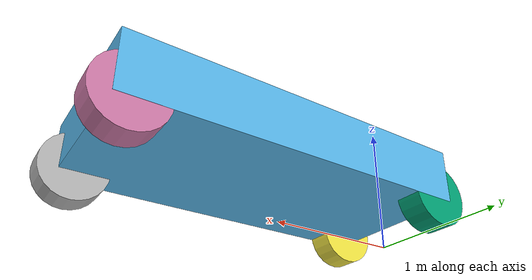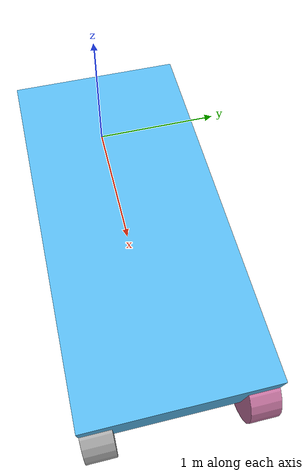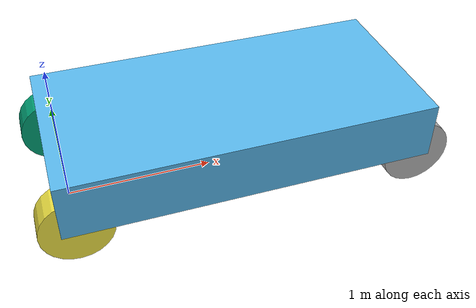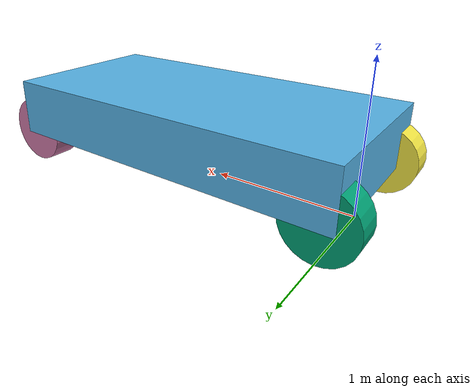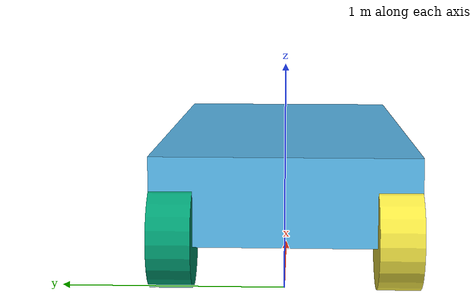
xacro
<?xml version="1.0"?>
<robot xmlns:xacro="http://www.ros.org/wiki/xacro" name="golf_cart">

  <!-- Parameters (meters, radians, kg) -->
  <xacro:property name="wheel_diameter" value="0.471"/>
  <xacro:property name="wheel_radius"   value="0.2355"/>
  <xacro:property name="wheel_width"    value="0.19304"/>

  <xacro:property name="wheelbase"      value="2.30"/>
  <xacro:property name="track_width"    value="1.005"/>

  <!-- Dummy root link (KDL safe) -->
  <link name="base_footprint"/>

  <!-- Base link (rear axle center) -->
  <link name="base_link">
    <visual>
      <geometry>
        <box size="2.5 1.2 0.4"/>
      </geometry>
      <origin xyz="1.15 0 0.4"/>
    </visual>

    <collision>
      <geometry>
        <box size="2.5 1.2 0.4"/>
      </geometry>
      <origin xyz="1.15 0 0.4"/>
    </collision>

    <inertial>
      <mass value="250"/>
      <origin xyz="1.15 0 0.4"/>
      <inertia
        ixx="40" ixy="0" ixz="0"
        iyy="60" iyz="0"
        izz="80"/>
    </inertial>
  </link>

  <joint name="base_footprint_to_base_link" type="fixed">
    <parent link="base_footprint"/>
    <child link="base_link"/>
    <origin xyz="0 0 0"/>
  </joint>

  <!-- Wheel macro -->
  <xacro:macro name="wheel" params="name">
    <link name="${name}">
      <visual>
        <geometry>
          <cylinder radius="${wheel_radius}" length="${wheel_width}"/>
        </geometry>
        <origin rpy="1.5708 0 0"/>
      </visual>

      <collision>
        <geometry>
          <cylinder radius="${wheel_radius}" length="${wheel_width}"/>
        </geometry>
        <origin rpy="1.5708 0 0"/>
      </collision>

      <inertial>
        <mass value="15"/>
        <inertia
          ixx="0.3" ixy="0" ixz="0"
          iyy="0.3" iyz="0"
          izz="0.3"/>
      </inertial>
    </link>
  </xacro:macro>

  <!-- Rear wheels (drive only) -->
  <xacro:wheel name="rear_left_wheel_link"/>
  <joint name="rear_left_wheel_joint" type="continuous">
    <parent link="base_link"/>
    <child link="rear_left_wheel_link"/>
    <origin xyz="0 ${track_width/2} ${wheel_radius}"/>
    <axis xyz="0 1 0"/>
  </joint>

  <xacro:wheel name="rear_right_wheel_link"/>
  <joint name="rear_right_wheel_joint" type="continuous">
    <parent link="base_link"/>
    <child link="rear_right_wheel_link"/>
    <origin xyz="0 ${-track_width/2} ${wheel_radius}"/>
    <axis xyz="0 1 0"/>
  </joint>

  <!-- Front steering links -->
  <link name="front_left_steer_link">
  <inertial>
    <mass value="5.0"/>
    <origin xyz="0 0 0"/>
    <inertia
      ixx="0.01" ixy="0" ixz="0"
      iyy="0.01" iyz="0"
      izz="0.01"/>
  </inertial>
</link>

  <joint name="front_left_steer_joint" type="revolute">
    <parent link="base_link"/>
    <child link="front_left_steer_link"/>
    <origin xyz="${wheelbase} ${track_width/2} 0"/>
    <axis xyz="0 0 1"/>
    <limit lower="-0.6" upper="0.6" effort="80" velocity="1.5"/>
  </joint>

  <link name="front_right_steer_link">
  <inertial>
    <mass value="5.0"/>
    <origin xyz="0 0 0"/>
    <inertia
      ixx="0.01" ixy="0" ixz="0"
      iyy="0.01" iyz="0"
      izz="0.01"/>
  </inertial>
</link>

  <joint name="front_right_steer_joint" type="revolute">
    <parent link="base_link"/>
    <child link="front_right_steer_link"/>
    <origin xyz="${wheelbase} ${-track_width/2} 0"/>
    <axis xyz="0 0 1"/>
    <limit lower="-0.6" upper="0.6" effort="80" velocity="1.5"/>
  </joint>

  <!-- Front wheels (steer + roll) -->
  <xacro:wheel name="front_left_wheel_link"/>
  <joint name="front_left_wheel_joint" type="continuous">
    <parent link="front_left_steer_link"/>
    <child link="front_left_wheel_link"/>
    <origin xyz="0 0 ${wheel_radius}"/>
    <axis xyz="0 1 0"/>
  </joint>

  <xacro:wheel name="front_right_wheel_link"/>
  <joint name="front_right_wheel_joint" type="continuous">
    <parent link="front_right_steer_link"/>
    <child link="front_right_wheel_link"/>
    <origin xyz="0 0 ${wheel_radius}"/>
    <axis xyz="0 1 0"/>
  </joint>

  <!-- ROS2 CONTROL (Ackermann) -->
<!-- ROS2 CONTROL (Ackermann) -->
<ros2_control name="AckermannSystem" type="system">
  <hardware>
    <plugin>gazebo_ros2_control/GazeboSystem</plugin>
  </hardware>

  <!-- Rear driven wheels -->
  <joint name="rear_left_wheel_joint">
    <command_interface name="velocity"/>
    <state_interface name="position"/>
    <state_interface name="velocity"/>
  </joint>

  <joint name="rear_right_wheel_joint">
    <command_interface name="velocity"/>
    <state_interface name="position"/>
    <state_interface name="velocity"/>
  </joint>

  <!-- Front steering joints -->
  <joint name="front_left_steer_joint">
    <command_interface name="position"/>
    <state_interface name="position"/>
    <state_interface name="velocity"/>
  </joint>

  <joint name="front_right_steer_joint">
    <command_interface name="position"/>
    <state_interface name="position"/>
    <state_interface name="velocity"/>
  </joint>
</ros2_control>

  <!-- Gazebo ros2_control plugin -->
<gazebo>
  <plugin name="gazebo_ros2_control" filename="libgazebo_ros2_control.so">
    <robot_param>robot_description</robot_param>
    <robot_param_node>robot_state_publisher</robot_param_node>
     <parameters> ~/ros2_ws/src/golf_cart_description/config/ackermann_controller.yaml</parameters>
  </plugin>
</gazebo>

</robot>
